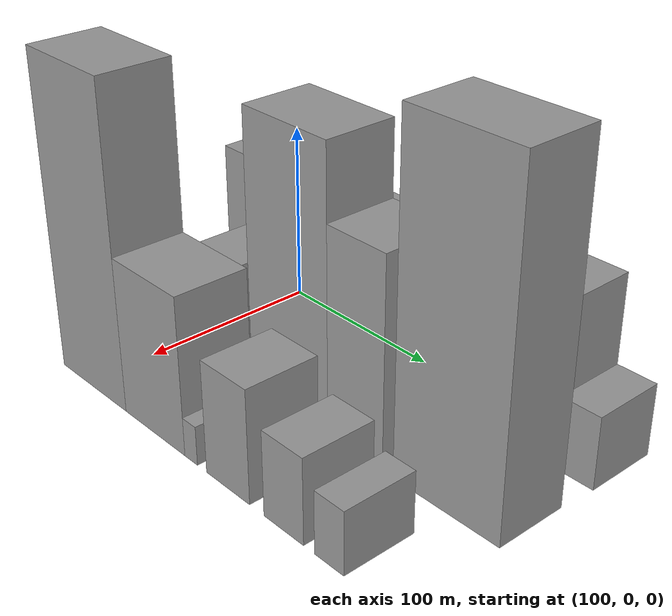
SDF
<sdf version="1.6">
 <world name="default">
  <model name="building_26">
   <static>1</static>
   <pose>100.0000 -15.3454 0 0.000000 0.000000 0.000000</pose>
   <link name="link">
    <pose>0 0 42.00 0 0 0</pose>
    <collision name="collision"><geometry><box><size>40.0000 44.3872 84.0000</size></box></geometry></collision>
    <visual name="visual">
     <cast_shadows>0</cast_shadows>
     <geometry><box><size>40.0000 44.3872 84.0000</size></box></geometry>
     <material>
      <script>
       <uri>model://grey_wall/materials/scripts</uri>
       <uri>model://grey_wall/materials/textures</uri>
       <name>vrc/grey_wall</name>
      </script>
     </material>
    </visual>
   </link>
  </model>
  <model name="building_27">
   <static>1</static>
   <pose>100.0000 23.5425 0 0.000000 0.000000 0.000000</pose>
   <link name="link">
    <pose>0 0 16.50 0 0 0</pose>
    <collision name="collision"><geometry><box><size>40.0000 17.3886 33.0000</size></box></geometry></collision>
    <visual name="visual">
     <cast_shadows>0</cast_shadows>
     <geometry><box><size>40.0000 17.3886 33.0000</size></box></geometry>
     <material>
      <script>
       <uri>model://grey_wall/materials/scripts</uri>
       <uri>model://grey_wall/materials/textures</uri>
       <name>vrc/grey_wall</name>
      </script>
     </material>
    </visual>
   </link>
  </model>
  <model name="building_28">
   <static>1</static>
   <pose>100.0000 59.1614 0 0.000000 0.000000 0.000000</pose>
   <link name="link">
    <pose>0 0 37.50 0 0 0</pose>
    <collision name="collision"><geometry><box><size>40.0000 37.8491 75.0000</size></box></geometry></collision>
    <visual name="visual">
     <cast_shadows>0</cast_shadows>
     <geometry><box><size>40.0000 37.8491 75.0000</size></box></geometry>
     <material>
      <script>
       <uri>model://grey_wall/materials/scripts</uri>
       <uri>model://grey_wall/materials/textures</uri>
       <name>vrc/grey_wall</name>
      </script>
     </material>
    </visual>
   </link>
  </model>
  <model name="building_29">
   <static>1</static>
   <pose>100.0000 91.3784 0 0.000000 0.000000 0.000000</pose>
   <link name="link">
    <pose>0 0 25.50 0 0 0</pose>
    <collision name="collision"><geometry><box><size>40.0000 26.5849 51.0000</size></box></geometry></collision>
    <visual name="visual">
     <cast_shadows>0</cast_shadows>
     <geometry><box><size>40.0000 26.5849 51.0000</size></box></geometry>
     <material>
      <script>
       <uri>model://grey_wall/materials/scripts</uri>
       <uri>model://grey_wall/materials/textures</uri>
       <name>vrc/grey_wall</name>
      </script>
     </material>
    </visual>
   </link>
  </model>
  <model name="building_30">
   <static>1</static>
   <pose>100.0000 125.3945 0 0.000000 0.000000 0.000000</pose>
   <link name="link">
    <pose>0 0 67.50 0 0 0</pose>
    <collision name="collision"><geometry><box><size>40.0000 41.4472 135.0000</size></box></geometry></collision>
    <visual name="visual">
     <cast_shadows>0</cast_shadows>
     <geometry><box><size>40.0000 41.4472 135.0000</size></box></geometry>
     <material>
      <script>
       <uri>model://grey_wall/materials/scripts</uri>
       <uri>model://grey_wall/materials/textures</uri>
       <name>vrc/grey_wall</name>
      </script>
     </material>
    </visual>
   </link>
  </model>
  <model name="building_31">
   <static>1</static>
   <pose>100.0000 150.7980 0 0.000000 0.000000 0.000000</pose>
   <link name="link">
    <pose>0 0 10.50 0 0 0</pose>
    <collision name="collision"><geometry><box><size>40.0000 9.3599 21.0000</size></box></geometry></collision>
    <visual name="visual">
     <cast_shadows>0</cast_shadows>
     <geometry><box><size>40.0000 9.3599 21.0000</size></box></geometry>
     <material>
      <script>
       <uri>model://grey_wall/materials/scripts</uri>
       <uri>model://grey_wall/materials/textures</uri>
       <name>vrc/grey_wall</name>
      </script>
     </material>
    </visual>
   </link>
  </model>
  <model name="building_32">
   <static>1</static>
   <pose>100.0000 179.3233 0 0.000000 0.000000 0.000000</pose>
   <link name="link">
    <pose>0 0 43.50 0 0 0</pose>
    <collision name="collision"><geometry><box><size>40.0000 47.6907 87.0000</size></box></geometry></collision>
    <visual name="visual">
     <cast_shadows>0</cast_shadows>
     <geometry><box><size>40.0000 47.6907 87.0000</size></box></geometry>
     <material>
      <script>
       <uri>model://grey_wall/materials/scripts</uri>
       <uri>model://grey_wall/materials/textures</uri>
       <name>vrc/grey_wall</name>
      </script>
     </material>
    </visual>
   </link>
  </model>
  <model name="building_33">
   <static>1</static>
   <pose>100.0000 214.2500 0 0.000000 0.000000 0.000000</pose>
   <link name="link">
    <pose>0 0 19.50 0 0 0</pose>
    <collision name="collision"><geometry><box><size>40.0000 22.1627 39.0000</size></box></geometry></collision>
    <visual name="visual">
     <cast_shadows>0</cast_shadows>
     <geometry><box><size>40.0000 22.1627 39.0000</size></box></geometry>
     <material>
      <script>
       <uri>model://grey_wall/materials/scripts</uri>
       <uri>model://grey_wall/materials/textures</uri>
       <name>vrc/grey_wall</name>
      </script>
     </material>
    </visual>
   </link>
  </model>
  <model name="building_77">
   <static>1</static>
   <pose>160.0000 -5.6875 0 0.000000 0.000000 0.000000</pose>
   <link name="link">
    <pose>0 0 21.00 0 0 0</pose>
    <collision name="collision"><geometry><box><size>40.0000 22.2687 42.0000</size></box></geometry></collision>
    <visual name="visual">
     <cast_shadows>0</cast_shadows>
     <geometry><box><size>40.0000 22.2687 42.0000</size></box></geometry>
     <material>
      <script>
       <uri>model://grey_wall/materials/scripts</uri>
       <uri>model://grey_wall/materials/textures</uri>
       <name>vrc/grey_wall</name>
      </script>
     </material>
    </visual>
   </link>
  </model>
  <model name="building_78">
   <static>1</static>
   <pose>160.0000 30.5514 0 0.000000 0.000000 0.000000</pose>
   <link name="link">
    <pose>0 0 31.50 0 0 0</pose>
    <collision name="collision"><geometry><box><size>40.0000 34.2091 63.0000</size></box></geometry></collision>
    <visual name="visual">
     <cast_shadows>0</cast_shadows>
     <geometry><box><size>40.0000 34.2091 63.0000</size></box></geometry>
     <material>
      <script>
       <uri>model://grey_wall/materials/scripts</uri>
       <uri>model://grey_wall/materials/textures</uri>
       <name>vrc/grey_wall</name>
      </script>
     </material>
    </visual>
   </link>
  </model>
  <model name="building_79">
   <static>1</static>
   <pose>160.0000 86.2601 0 0.000000 0.000000 0.000000</pose>
   <link name="link">
    <pose>0 0 75.00 0 0 0</pose>
    <collision name="collision"><geometry><box><size>40.0000 57.2084 150.0000</size></box></geometry></collision>
    <visual name="visual">
     <cast_shadows>0</cast_shadows>
     <geometry><box><size>40.0000 57.2084 150.0000</size></box></geometry>
     <material>
      <script>
       <uri>model://grey_wall/materials/scripts</uri>
       <uri>model://grey_wall/materials/textures</uri>
       <name>vrc/grey_wall</name>
      </script>
     </material>
    </visual>
   </link>
  </model>
  <model name="building_80">
   <static>1</static>
   <pose>160.0000 133.6153 0 0.000000 0.000000 0.000000</pose>
   <link name="link">
    <pose>0 0 55.50 0 0 0</pose>
    <collision name="collision"><geometry><box><size>40.0000 37.5018 111.0000</size></box></geometry></collision>
    <visual name="visual">
     <cast_shadows>0</cast_shadows>
     <geometry><box><size>40.0000 37.5018 111.0000</size></box></geometry>
     <material>
      <script>
       <uri>model://grey_wall/materials/scripts</uri>
       <uri>model://grey_wall/materials/textures</uri>
       <name>vrc/grey_wall</name>
      </script>
     </material>
    </visual>
   </link>
  </model>
  <model name="building_81">
   <static>1</static>
   <pose>160.0000 191.4903 0 0.000000 0.000000 0.000000</pose>
   <link name="link">
    <pose>0 0 90.00 0 0 0</pose>
    <collision name="collision"><geometry><box><size>40.0000 64.2482 180.0000</size></box></geometry></collision>
    <visual name="visual">
     <cast_shadows>0</cast_shadows>
     <geometry><box><size>40.0000 64.2482 180.0000</size></box></geometry>
     <material>
      <script>
       <uri>model://grey_wall/materials/scripts</uri>
       <uri>model://grey_wall/materials/textures</uri>
       <name>vrc/grey_wall</name>
      </script>
     </material>
    </visual>
   </link>
  </model>
  <model name="building_130">
   <static>1</static>
   <pose>220.0000 5.8965 0 0.000000 0.000000 0.000000</pose>
   <link name="link">
    <pose>0 0 85.50 0 0 0</pose>
    <collision name="collision"><geometry><box><size>40.0000 57.1688 171.0000</size></box></geometry></collision>
    <visual name="visual">
     <cast_shadows>0</cast_shadows>
     <geometry><box><size>40.0000 57.1688 171.0000</size></box></geometry>
     <material>
      <script>
       <uri>model://grey_wall/materials/scripts</uri>
       <uri>model://grey_wall/materials/textures</uri>
       <name>vrc/grey_wall</name>
      </script>
     </material>
    </visual>
   </link>
  </model>
  <model name="building_131">
   <static>1</static>
   <pose>220.0000 58.8284 0 0.000000 0.000000 0.000000</pose>
   <link name="link">
    <pose>0 0 42.00 0 0 0</pose>
    <collision name="collision"><geometry><box><size>40.0000 48.6949 84.0000</size></box></geometry></collision>
    <visual name="visual">
     <cast_shadows>0</cast_shadows>
     <geometry><box><size>40.0000 48.6949 84.0000</size></box></geometry>
     <material>
      <script>
       <uri>model://grey_wall/materials/scripts</uri>
       <uri>model://grey_wall/materials/textures</uri>
       <name>vrc/grey_wall</name>
      </script>
     </material>
    </visual>
   </link>
  </model>
  <model name="building_132">
   <static>1</static>
   <pose>220.0000 88.0562 0 0.000000 0.000000 0.000000</pose>
   <link name="link">
    <pose>0 0 10.50 0 0 0</pose>
    <collision name="collision"><geometry><box><size>40.0000 9.7608 21.0000</size></box></geometry></collision>
    <visual name="visual">
     <cast_shadows>0</cast_shadows>
     <geometry><box><size>40.0000 9.7608 21.0000</size></box></geometry>
     <material>
      <script>
       <uri>model://grey_wall/materials/scripts</uri>
       <uri>model://grey_wall/materials/textures</uri>
       <name>vrc/grey_wall</name>
      </script>
     </material>
    </visual>
   </link>
  </model>
  <model name="building_133">
   <static>1</static>
   <pose>220.0000 115.6216 0 0.000000 0.000000 0.000000</pose>
   <link name="link">
    <pose>0 0 30.00 0 0 0</pose>
    <collision name="collision"><geometry><box><size>40.0000 31.3701 60.0000</size></box></geometry></collision>
    <visual name="visual">
     <cast_shadows>0</cast_shadows>
     <geometry><box><size>40.0000 31.3701 60.0000</size></box></geometry>
     <material>
      <script>
       <uri>model://grey_wall/materials/scripts</uri>
       <uri>model://grey_wall/materials/textures</uri>
       <name>vrc/grey_wall</name>
      </script>
     </material>
    </visual>
   </link>
  </model>
  <model name="building_134">
   <static>1</static>
   <pose>220.0000 154.5088 0 0.000000 0.000000 0.000000</pose>
   <link name="link">
    <pose>0 0 22.50 0 0 0</pose>
    <collision name="collision"><geometry><box><size>40.0000 26.4043 45.0000</size></box></geometry></collision>
    <visual name="visual">
     <cast_shadows>0</cast_shadows>
     <geometry><box><size>40.0000 26.4043 45.0000</size></box></geometry>
     <material>
      <script>
       <uri>model://grey_wall/materials/scripts</uri>
       <uri>model://grey_wall/materials/textures</uri>
       <name>vrc/grey_wall</name>
      </script>
     </material>
    </visual>
   </link>
  </model>
  <model name="building_135">
   <static>1</static>
   <pose>220.0000 183.8431 0 0.000000 0.000000 0.000000</pose>
   <link name="link">
    <pose>0 0 16.50 0 0 0</pose>
    <collision name="collision"><geometry><box><size>40.0000 18.2643 33.0000</size></box></geometry></collision>
    <visual name="visual">
     <cast_shadows>0</cast_shadows>
     <geometry><box><size>40.0000 18.2643 33.0000</size></box></geometry>
     <material>
      <script>
       <uri>model://grey_wall/materials/scripts</uri>
       <uri>model://grey_wall/materials/textures</uri>
       <name>vrc/grey_wall</name>
      </script>
     </material>
    </visual>
   </link>
  </model>
 </world>
</sdf>
